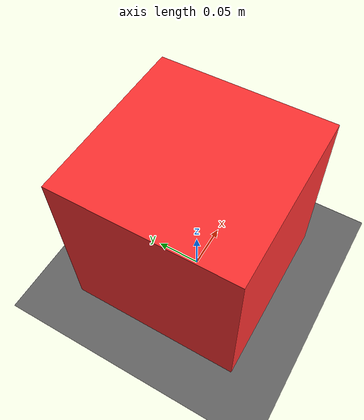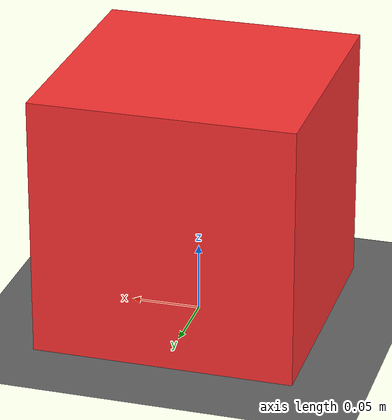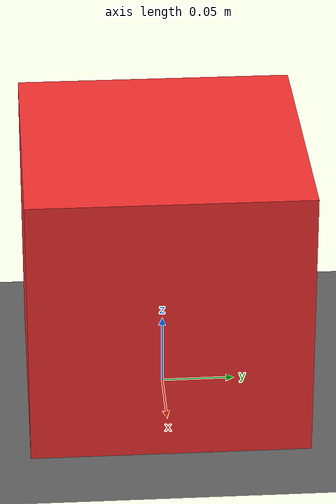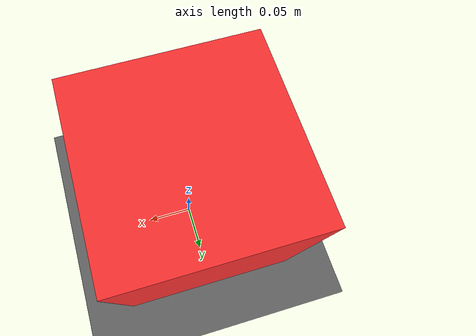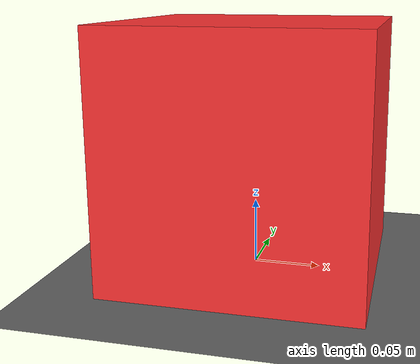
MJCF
<mujoco model="scene">
  <compiler angle="radian" autolimits="true"/>
  <option timestep="0.001" integrator="RK4"/>
  <visual>
    <headlight active="0"/>
  </visual>
  <statistic meansize="0.0816967" extent="2" center="0 0 0"/>
  <default class="main">
    <default class="/"/>
    <default class="mbs0/"/>
    <default class="mbs1/"/>
  </default>
  <asset>
    <material name="heightmap_0_material" class="/" rgba="0.392157 0.392157 0.392157 1"/>
    <material name="mbs1/geom_mbs1_geom0_material" class="mbs1/" rgba="1 0.196078 0.196078 1"/>
  </asset>
  <worldbody>
    <geom name="//unnamed_geom_0" class="/" size="10 10 1" quat="0 0 0 1" type="plane" material="heightmap_0_material"/>
    <light name="//unnamed_light_0" class="/" pos="0 0 100" dir="0 0 -1" directional="true" castshadow="false" ambient="0.5 0.5 0.5"/>
    <body name="mbs0/" quat="0 0 0 1"/>
    <body name="mbs1/" pos="0 0 0.0943294" quat="0 0 0 1">
      <joint name="mbs1/" type="free"/>
      <geom name="mbs1/mbs1_geom0" class="mbs1/" size="0.0943294 0.0943294 0.0943294" type="box" material="mbs1/geom_mbs1_geom0_material"/>
      <site name="mbs1/mbs1_site_imu_0" class="mbs1/" pos="0 0 0" quat="0 0 0 1"/>
    </body>
  </worldbody>
  <sensor>
    <gyro site="mbs1/mbs1_site_imu_0" name="mbs1/imu_gyro_mbs1_0"/>
    <accelerometer site="mbs1/mbs1_site_imu_0" name="mbs1/imu_accelerometer_mbs1_0"/>
  </sensor>
</mujoco>
